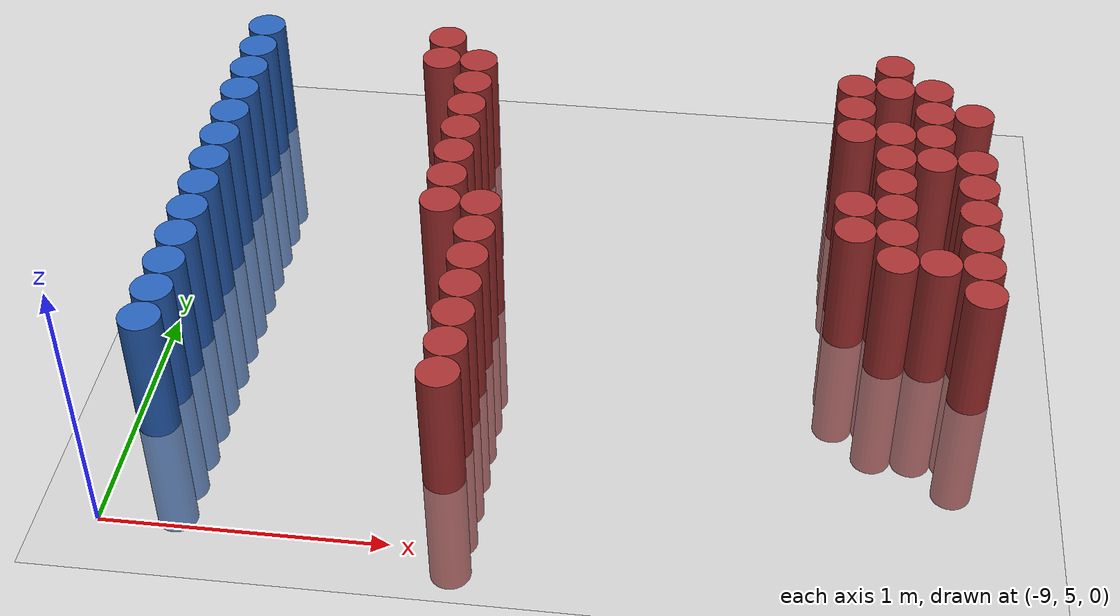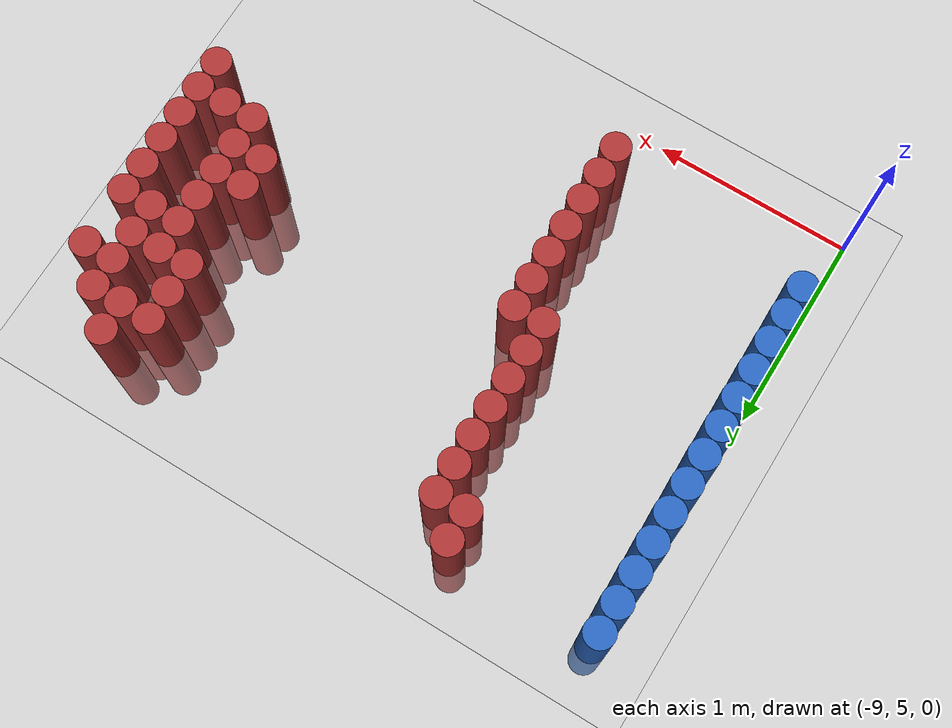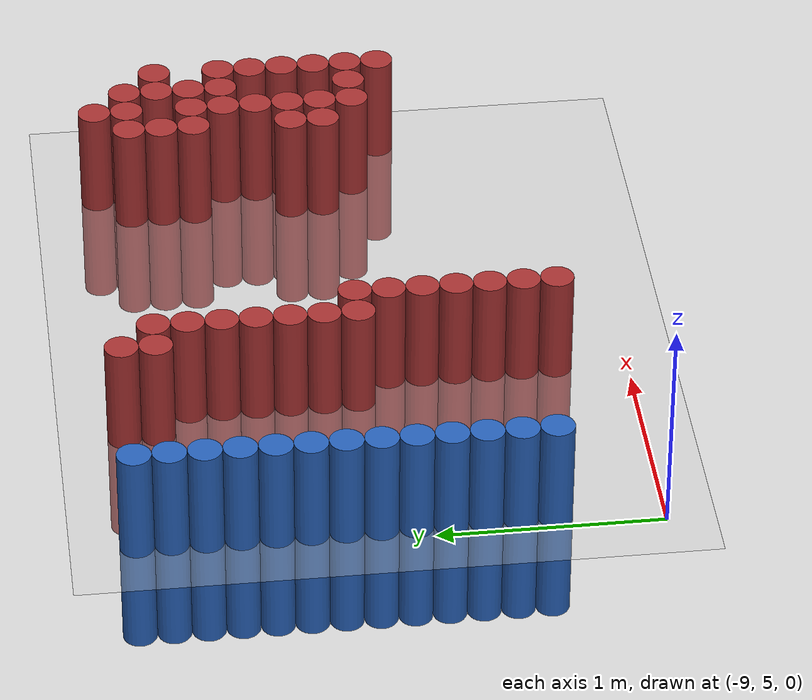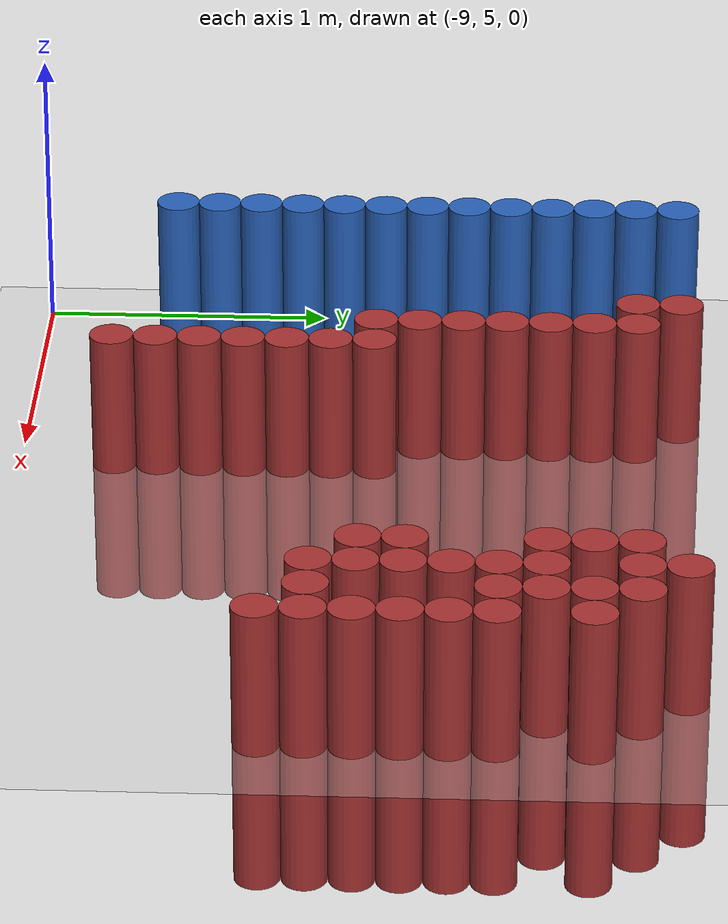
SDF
<sdf version="1.6">
 <world name="default">
  <model name="ground_plane">
   <static>1</static>
   <link name="link">
    <collision name="collision">
     <geometry><plane><normal>0 0 1</normal><size>100 100</size></plane></geometry>
     <surface><friction><ode><mu>100</mu><mu2>50</mu2></ode></friction></surface>
    </collision>
    <visual name="visual">
     <cast_shadows>0</cast_shadows>
     <geometry><plane><normal>0 0 1</normal><size>100 100</size></plane></geometry>
     <material>
      <script><uri>file://media/materials/scripts/gazebo.material</uri><name>Gazebo/Grey</name></script>
     </material>
    </visual>
   </link>
  </model>
  <model name="unit_cylinder_127">
   <static>1</static>
   <pose>-8.925000 5.475000 0.000000 0.000000 0.000000 0.000000</pose>
   <link name="link">
    <inertial>
     <mass>1</mass>
     <inertia><ixx>0.145833</ixx><ixy>0</ixy><ixz>0</ixz><iyy>0.145833</iyy><iyz>0</iyz><izz>0.125</izz></inertia>
    </inertial>
    <collision name="collision">
     <geometry><cylinder><radius>0.075000</radius><length>1</length></cylinder></geometry>
    </collision>
    <visual name="visual">
     <geometry><cylinder><radius>0.075000</radius><length>1</length></cylinder></geometry>
     <material>
      <ambient>0.152000 0.379000 0.720000 1</ambient>
      <diffuse>0.152000 0.379000 0.720000 1</diffuse>
     </material>
     <material>
      <script><name>Gazebo/Grey</name><uri>file://media/materials/scripts/gazebo.material</uri></script>
     </material>
    </visual>
   </link>
  </model>
  <model name="unit_cylinder_128">
   <static>1</static>
   <pose>-8.925000 5.625000 0.000000 0.000000 0.000000 0.000000</pose>
   <link name="link">
    <inertial>
     <mass>1</mass>
     <inertia><ixx>0.145833</ixx><ixy>0</ixy><ixz>0</ixz><iyy>0.145833</iyy><iyz>0</iyz><izz>0.125</izz></inertia>
    </inertial>
    <collision name="collision">
     <geometry><cylinder><radius>0.075000</radius><length>1</length></cylinder></geometry>
    </collision>
    <visual name="visual">
     <geometry><cylinder><radius>0.075000</radius><length>1</length></cylinder></geometry>
     <material>
      <ambient>0.152000 0.379000 0.720000 1</ambient>
      <diffuse>0.152000 0.379000 0.720000 1</diffuse>
     </material>
     <material>
      <script><name>Gazebo/Grey</name><uri>file://media/materials/scripts/gazebo.material</uri></script>
     </material>
    </visual>
   </link>
  </model>
  <model name="unit_cylinder_129">
   <static>1</static>
   <pose>-8.925000 5.775000 0.000000 0.000000 0.000000 0.000000</pose>
   <link name="link">
    <inertial>
     <mass>1</mass>
     <inertia><ixx>0.145833</ixx><ixy>0</ixy><ixz>0</ixz><iyy>0.145833</iyy><iyz>0</iyz><izz>0.125</izz></inertia>
    </inertial>
    <collision name="collision">
     <geometry><cylinder><radius>0.075000</radius><length>1</length></cylinder></geometry>
    </collision>
    <visual name="visual">
     <geometry><cylinder><radius>0.075000</radius><length>1</length></cylinder></geometry>
     <material>
      <ambient>0.152000 0.379000 0.720000 1</ambient>
      <diffuse>0.152000 0.379000 0.720000 1</diffuse>
     </material>
     <material>
      <script><name>Gazebo/Grey</name><uri>file://media/materials/scripts/gazebo.material</uri></script>
     </material>
    </visual>
   </link>
  </model>
  <model name="unit_cylinder_130">
   <static>1</static>
   <pose>-8.925000 5.925000 0.000000 0.000000 0.000000 0.000000</pose>
   <link name="link">
    <inertial>
     <mass>1</mass>
     <inertia><ixx>0.145833</ixx><ixy>0</ixy><ixz>0</ixz><iyy>0.145833</iyy><iyz>0</iyz><izz>0.125</izz></inertia>
    </inertial>
    <collision name="collision">
     <geometry><cylinder><radius>0.075000</radius><length>1</length></cylinder></geometry>
    </collision>
    <visual name="visual">
     <geometry><cylinder><radius>0.075000</radius><length>1</length></cylinder></geometry>
     <material>
      <ambient>0.152000 0.379000 0.720000 1</ambient>
      <diffuse>0.152000 0.379000 0.720000 1</diffuse>
     </material>
     <material>
      <script><name>Gazebo/Grey</name><uri>file://media/materials/scripts/gazebo.material</uri></script>
     </material>
    </visual>
   </link>
  </model>
  <model name="unit_cylinder_131">
   <static>1</static>
   <pose>-8.925000 6.075000 0.000000 0.000000 0.000000 0.000000</pose>
   <link name="link">
    <inertial>
     <mass>1</mass>
     <inertia><ixx>0.145833</ixx><ixy>0</ixy><ixz>0</ixz><iyy>0.145833</iyy><iyz>0</iyz><izz>0.125</izz></inertia>
    </inertial>
    <collision name="collision">
     <geometry><cylinder><radius>0.075000</radius><length>1</length></cylinder></geometry>
    </collision>
    <visual name="visual">
     <geometry><cylinder><radius>0.075000</radius><length>1</length></cylinder></geometry>
     <material>
      <ambient>0.152000 0.379000 0.720000 1</ambient>
      <diffuse>0.152000 0.379000 0.720000 1</diffuse>
     </material>
     <material>
      <script><name>Gazebo/Grey</name><uri>file://media/materials/scripts/gazebo.material</uri></script>
     </material>
    </visual>
   </link>
  </model>
  <model name="unit_cylinder_132">
   <static>1</static>
   <pose>-8.925000 6.225000 0.000000 0.000000 0.000000 0.000000</pose>
   <link name="link">
    <inertial>
     <mass>1</mass>
     <inertia><ixx>0.145833</ixx><ixy>0</ixy><ixz>0</ixz><iyy>0.145833</iyy><iyz>0</iyz><izz>0.125</izz></inertia>
    </inertial>
    <collision name="collision">
     <geometry><cylinder><radius>0.075000</radius><length>1</length></cylinder></geometry>
    </collision>
    <visual name="visual">
     <geometry><cylinder><radius>0.075000</radius><length>1</length></cylinder></geometry>
     <material>
      <ambient>0.152000 0.379000 0.720000 1</ambient>
      <diffuse>0.152000 0.379000 0.720000 1</diffuse>
     </material>
     <material>
      <script><name>Gazebo/Grey</name><uri>file://media/materials/scripts/gazebo.material</uri></script>
     </material>
    </visual>
   </link>
  </model>
  <model name="unit_cylinder_133">
   <static>1</static>
   <pose>-8.925000 6.375000 0.000000 0.000000 0.000000 0.000000</pose>
   <link name="link">
    <inertial>
     <mass>1</mass>
     <inertia><ixx>0.145833</ixx><ixy>0</ixy><ixz>0</ixz><iyy>0.145833</iyy><iyz>0</iyz><izz>0.125</izz></inertia>
    </inertial>
    <collision name="collision">
     <geometry><cylinder><radius>0.075000</radius><length>1</length></cylinder></geometry>
    </collision>
    <visual name="visual">
     <geometry><cylinder><radius>0.075000</radius><length>1</length></cylinder></geometry>
     <material>
      <ambient>0.152000 0.379000 0.720000 1</ambient>
      <diffuse>0.152000 0.379000 0.720000 1</diffuse>
     </material>
     <material>
      <script><name>Gazebo/Grey</name><uri>file://media/materials/scripts/gazebo.material</uri></script>
     </material>
    </visual>
   </link>
  </model>
  <model name="unit_cylinder_134">
   <static>1</static>
   <pose>-8.925000 6.525000 0.000000 0.000000 0.000000 0.000000</pose>
   <link name="link">
    <inertial>
     <mass>1</mass>
     <inertia><ixx>0.145833</ixx><ixy>0</ixy><ixz>0</ixz><iyy>0.145833</iyy><iyz>0</iyz><izz>0.125</izz></inertia>
    </inertial>
    <collision name="collision">
     <geometry><cylinder><radius>0.075000</radius><length>1</length></cylinder></geometry>
    </collision>
    <visual name="visual">
     <geometry><cylinder><radius>0.075000</radius><length>1</length></cylinder></geometry>
     <material>
      <ambient>0.152000 0.379000 0.720000 1</ambient>
      <diffuse>0.152000 0.379000 0.720000 1</diffuse>
     </material>
     <material>
      <script><name>Gazebo/Grey</name><uri>file://media/materials/scripts/gazebo.material</uri></script>
     </material>
    </visual>
   </link>
  </model>
  <model name="unit_cylinder_135">
   <static>1</static>
   <pose>-8.925000 6.675000 0.000000 0.000000 0.000000 0.000000</pose>
   <link name="link">
    <inertial>
     <mass>1</mass>
     <inertia><ixx>0.145833</ixx><ixy>0</ixy><ixz>0</ixz><iyy>0.145833</iyy><iyz>0</iyz><izz>0.125</izz></inertia>
    </inertial>
    <collision name="collision">
     <geometry><cylinder><radius>0.075000</radius><length>1</length></cylinder></geometry>
    </collision>
    <visual name="visual">
     <geometry><cylinder><radius>0.075000</radius><length>1</length></cylinder></geometry>
     <material>
      <ambient>0.152000 0.379000 0.720000 1</ambient>
      <diffuse>0.152000 0.379000 0.720000 1</diffuse>
     </material>
     <material>
      <script><name>Gazebo/Grey</name><uri>file://media/materials/scripts/gazebo.material</uri></script>
     </material>
    </visual>
   </link>
  </model>
  <model name="unit_cylinder_136">
   <static>1</static>
   <pose>-8.925000 6.825000 0.000000 0.000000 0.000000 0.000000</pose>
   <link name="link">
    <inertial>
     <mass>1</mass>
     <inertia><ixx>0.145833</ixx><ixy>0</ixy><ixz>0</ixz><iyy>0.145833</iyy><iyz>0</iyz><izz>0.125</izz></inertia>
    </inertial>
    <collision name="collision">
     <geometry><cylinder><radius>0.075000</radius><length>1</length></cylinder></geometry>
    </collision>
    <visual name="visual">
     <geometry><cylinder><radius>0.075000</radius><length>1</length></cylinder></geometry>
     <material>
      <ambient>0.152000 0.379000 0.720000 1</ambient>
      <diffuse>0.152000 0.379000 0.720000 1</diffuse>
     </material>
     <material>
      <script><name>Gazebo/Grey</name><uri>file://media/materials/scripts/gazebo.material</uri></script>
     </material>
    </visual>
   </link>
  </model>
  <model name="unit_cylinder_137">
   <static>1</static>
   <pose>-8.925000 6.975000 0.000000 0.000000 0.000000 0.000000</pose>
   <link name="link">
    <inertial>
     <mass>1</mass>
     <inertia><ixx>0.145833</ixx><ixy>0</ixy><ixz>0</ixz><iyy>0.145833</iyy><iyz>0</iyz><izz>0.125</izz></inertia>
    </inertial>
    <collision name="collision">
     <geometry><cylinder><radius>0.075000</radius><length>1</length></cylinder></geometry>
    </collision>
    <visual name="visual">
     <geometry><cylinder><radius>0.075000</radius><length>1</length></cylinder></geometry>
     <material>
      <ambient>0.152000 0.379000 0.720000 1</ambient>
      <diffuse>0.152000 0.379000 0.720000 1</diffuse>
     </material>
     <material>
      <script><name>Gazebo/Grey</name><uri>file://media/materials/scripts/gazebo.material</uri></script>
     </material>
    </visual>
   </link>
  </model>
  <model name="unit_cylinder_138">
   <static>1</static>
   <pose>-8.925000 7.125000 0.000000 0.000000 0.000000 0.000000</pose>
   <link name="link">
    <inertial>
     <mass>1</mass>
     <inertia><ixx>0.145833</ixx><ixy>0</ixy><ixz>0</ixz><iyy>0.145833</iyy><iyz>0</iyz><izz>0.125</izz></inertia>
    </inertial>
    <collision name="collision">
     <geometry><cylinder><radius>0.075000</radius><length>1</length></cylinder></geometry>
    </collision>
    <visual name="visual">
     <geometry><cylinder><radius>0.075000</radius><length>1</length></cylinder></geometry>
     <material>
      <ambient>0.152000 0.379000 0.720000 1</ambient>
      <diffuse>0.152000 0.379000 0.720000 1</diffuse>
     </material>
     <material>
      <script><name>Gazebo/Grey</name><uri>file://media/materials/scripts/gazebo.material</uri></script>
     </material>
    </visual>
   </link>
  </model>
  <model name="unit_cylinder_139">
   <static>1</static>
   <pose>-8.925000 7.275000 0.000000 0.000000 0.000000 0.000000</pose>
   <link name="link">
    <inertial>
     <mass>1</mass>
     <inertia><ixx>0.145833</ixx><ixy>0</ixy><ixz>0</ixz><iyy>0.145833</iyy><iyz>0</iyz><izz>0.125</izz></inertia>
    </inertial>
    <collision name="collision">
     <geometry><cylinder><radius>0.075000</radius><length>1</length></cylinder></geometry>
    </collision>
    <visual name="visual">
     <geometry><cylinder><radius>0.075000</radius><length>1</length></cylinder></geometry>
     <material>
      <ambient>0.152000 0.379000 0.720000 1</ambient>
      <diffuse>0.152000 0.379000 0.720000 1</diffuse>
     </material>
     <material>
      <script><name>Gazebo/Grey</name><uri>file://media/materials/scripts/gazebo.material</uri></script>
     </material>
    </visual>
   </link>
  </model>
  <model name="unit_cylinder_164">
   <static>1</static>
   <pose>-8.175000 7.125000 0.000000 0.000000 0.000000 0.000000</pose>
   <link name="link">
    <inertial>
     <mass>1</mass>
     <inertia><ixx>0.145833</ixx><ixy>0</ixy><ixz>0</ixz><iyy>0.145833</iyy><iyz>0</iyz><izz>0.125</izz></inertia>
    </inertial>
    <collision name="collision">
     <geometry><cylinder><radius>0.075000</radius><length>1</length></cylinder></geometry>
    </collision>
    <visual name="visual">
     <geometry><cylinder><radius>0.075000</radius><length>1</length></cylinder></geometry>
     <material>
      <ambient>0.648000 0.192000 0.192000 1</ambient>
      <diffuse>0.648000 0.192000 0.192000 1</diffuse>
     </material>
     <material>
      <script><name>Gazebo/Grey</name><uri>file://media/materials/scripts/gazebo.material</uri></script>
     </material>
    </visual>
   </link>
  </model>
  <model name="unit_cylinder_165">
   <static>1</static>
   <pose>-8.175000 7.275000 0.000000 0.000000 0.000000 0.000000</pose>
   <link name="link">
    <inertial>
     <mass>1</mass>
     <inertia><ixx>0.145833</ixx><ixy>0</ixy><ixz>0</ixz><iyy>0.145833</iyy><iyz>0</iyz><izz>0.125</izz></inertia>
    </inertial>
    <collision name="collision">
     <geometry><cylinder><radius>0.075000</radius><length>1</length></cylinder></geometry>
    </collision>
    <visual name="visual">
     <geometry><cylinder><radius>0.075000</radius><length>1</length></cylinder></geometry>
     <material>
      <ambient>0.648000 0.192000 0.192000 1</ambient>
      <diffuse>0.648000 0.192000 0.192000 1</diffuse>
     </material>
     <material>
      <script><name>Gazebo/Grey</name><uri>file://media/materials/scripts/gazebo.material</uri></script>
     </material>
    </visual>
   </link>
  </model>
  <model name="unit_cylinder_182">
   <static>1</static>
   <pose>-8.025000 6.225000 0.000000 0.000000 0.000000 0.000000</pose>
   <link name="link">
    <inertial>
     <mass>1</mass>
     <inertia><ixx>0.145833</ixx><ixy>0</ixy><ixz>0</ixz><iyy>0.145833</iyy><iyz>0</iyz><izz>0.125</izz></inertia>
    </inertial>
    <collision name="collision">
     <geometry><cylinder><radius>0.075000</radius><length>1</length></cylinder></geometry>
    </collision>
    <visual name="visual">
     <geometry><cylinder><radius>0.075000</radius><length>1</length></cylinder></geometry>
     <material>
      <ambient>0.648000 0.192000 0.192000 1</ambient>
      <diffuse>0.648000 0.192000 0.192000 1</diffuse>
     </material>
     <material>
      <script><name>Gazebo/Grey</name><uri>file://media/materials/scripts/gazebo.material</uri></script>
     </material>
    </visual>
   </link>
  </model>
  <model name="unit_cylinder_183">
   <static>1</static>
   <pose>-8.025000 6.375000 0.000000 0.000000 0.000000 0.000000</pose>
   <link name="link">
    <inertial>
     <mass>1</mass>
     <inertia><ixx>0.145833</ixx><ixy>0</ixy><ixz>0</ixz><iyy>0.145833</iyy><iyz>0</iyz><izz>0.125</izz></inertia>
    </inertial>
    <collision name="collision">
     <geometry><cylinder><radius>0.075000</radius><length>1</length></cylinder></geometry>
    </collision>
    <visual name="visual">
     <geometry><cylinder><radius>0.075000</radius><length>1</length></cylinder></geometry>
     <material>
      <ambient>0.648000 0.192000 0.192000 1</ambient>
      <diffuse>0.648000 0.192000 0.192000 1</diffuse>
     </material>
     <material>
      <script><name>Gazebo/Grey</name><uri>file://media/materials/scripts/gazebo.material</uri></script>
     </material>
    </visual>
   </link>
  </model>
  <model name="unit_cylinder_184">
   <static>1</static>
   <pose>-8.025000 6.525000 0.000000 0.000000 0.000000 0.000000</pose>
   <link name="link">
    <inertial>
     <mass>1</mass>
     <inertia><ixx>0.145833</ixx><ixy>0</ixy><ixz>0</ixz><iyy>0.145833</iyy><iyz>0</iyz><izz>0.125</izz></inertia>
    </inertial>
    <collision name="collision">
     <geometry><cylinder><radius>0.075000</radius><length>1</length></cylinder></geometry>
    </collision>
    <visual name="visual">
     <geometry><cylinder><radius>0.075000</radius><length>1</length></cylinder></geometry>
     <material>
      <ambient>0.648000 0.192000 0.192000 1</ambient>
      <diffuse>0.648000 0.192000 0.192000 1</diffuse>
     </material>
     <material>
      <script><name>Gazebo/Grey</name><uri>file://media/materials/scripts/gazebo.material</uri></script>
     </material>
    </visual>
   </link>
  </model>
  <model name="unit_cylinder_185">
   <static>1</static>
   <pose>-8.025000 6.675000 0.000000 0.000000 0.000000 0.000000</pose>
   <link name="link">
    <inertial>
     <mass>1</mass>
     <inertia><ixx>0.145833</ixx><ixy>0</ixy><ixz>0</ixz><iyy>0.145833</iyy><iyz>0</iyz><izz>0.125</izz></inertia>
    </inertial>
    <collision name="collision">
     <geometry><cylinder><radius>0.075000</radius><length>1</length></cylinder></geometry>
    </collision>
    <visual name="visual">
     <geometry><cylinder><radius>0.075000</radius><length>1</length></cylinder></geometry>
     <material>
      <ambient>0.648000 0.192000 0.192000 1</ambient>
      <diffuse>0.648000 0.192000 0.192000 1</diffuse>
     </material>
     <material>
      <script><name>Gazebo/Grey</name><uri>file://media/materials/scripts/gazebo.material</uri></script>
     </material>
    </visual>
   </link>
  </model>
  <model name="unit_cylinder_186">
   <static>1</static>
   <pose>-8.025000 6.825000 0.000000 0.000000 0.000000 0.000000</pose>
   <link name="link">
    <inertial>
     <mass>1</mass>
     <inertia><ixx>0.145833</ixx><ixy>0</ixy><ixz>0</ixz><iyy>0.145833</iyy><iyz>0</iyz><izz>0.125</izz></inertia>
    </inertial>
    <collision name="collision">
     <geometry><cylinder><radius>0.075000</radius><length>1</length></cylinder></geometry>
    </collision>
    <visual name="visual">
     <geometry><cylinder><radius>0.075000</radius><length>1</length></cylinder></geometry>
     <material>
      <ambient>0.648000 0.192000 0.192000 1</ambient>
      <diffuse>0.648000 0.192000 0.192000 1</diffuse>
     </material>
     <material>
      <script><name>Gazebo/Grey</name><uri>file://media/materials/scripts/gazebo.material</uri></script>
     </material>
    </visual>
   </link>
  </model>
  <model name="unit_cylinder_187">
   <static>1</static>
   <pose>-8.025000 6.975000 0.000000 0.000000 0.000000 0.000000</pose>
   <link name="link">
    <inertial>
     <mass>1</mass>
     <inertia><ixx>0.145833</ixx><ixy>0</ixy><ixz>0</ixz><iyy>0.145833</iyy><iyz>0</iyz><izz>0.125</izz></inertia>
    </inertial>
    <collision name="collision">
     <geometry><cylinder><radius>0.075000</radius><length>1</length></cylinder></geometry>
    </collision>
    <visual name="visual">
     <geometry><cylinder><radius>0.075000</radius><length>1</length></cylinder></geometry>
     <material>
      <ambient>0.648000 0.192000 0.192000 1</ambient>
      <diffuse>0.648000 0.192000 0.192000 1</diffuse>
     </material>
     <material>
      <script><name>Gazebo/Grey</name><uri>file://media/materials/scripts/gazebo.material</uri></script>
     </material>
    </visual>
   </link>
  </model>
  <model name="unit_cylinder_188">
   <static>1</static>
   <pose>-8.025000 7.125000 0.000000 0.000000 0.000000 0.000000</pose>
   <link name="link">
    <inertial>
     <mass>1</mass>
     <inertia><ixx>0.145833</ixx><ixy>0</ixy><ixz>0</ixz><iyy>0.145833</iyy><iyz>0</iyz><izz>0.125</izz></inertia>
    </inertial>
    <collision name="collision">
     <geometry><cylinder><radius>0.075000</radius><length>1</length></cylinder></geometry>
    </collision>
    <visual name="visual">
     <geometry><cylinder><radius>0.075000</radius><length>1</length></cylinder></geometry>
     <material>
      <ambient>0.648000 0.192000 0.192000 1</ambient>
      <diffuse>0.648000 0.192000 0.192000 1</diffuse>
     </material>
     <material>
      <script><name>Gazebo/Grey</name><uri>file://media/materials/scripts/gazebo.material</uri></script>
     </material>
    </visual>
   </link>
  </model>
  <model name="unit_cylinder_190">
   <static>1</static>
   <pose>-7.875000 5.325000 0.000000 0.000000 0.000000 0.000000</pose>
   <link name="link">
    <inertial>
     <mass>1</mass>
     <inertia><ixx>0.145833</ixx><ixy>0</ixy><ixz>0</ixz><iyy>0.145833</iyy><iyz>0</iyz><izz>0.125</izz></inertia>
    </inertial>
    <collision name="collision">
     <geometry><cylinder><radius>0.075000</radius><length>1</length></cylinder></geometry>
    </collision>
    <visual name="visual">
     <geometry><cylinder><radius>0.075000</radius><length>1</length></cylinder></geometry>
     <material>
      <ambient>0.648000 0.192000 0.192000 1</ambient>
      <diffuse>0.648000 0.192000 0.192000 1</diffuse>
     </material>
     <material>
      <script><name>Gazebo/Grey</name><uri>file://media/materials/scripts/gazebo.material</uri></script>
     </material>
    </visual>
   </link>
  </model>
  <model name="unit_cylinder_191">
   <static>1</static>
   <pose>-7.875000 5.475000 0.000000 0.000000 0.000000 0.000000</pose>
   <link name="link">
    <inertial>
     <mass>1</mass>
     <inertia><ixx>0.145833</ixx><ixy>0</ixy><ixz>0</ixz><iyy>0.145833</iyy><iyz>0</iyz><izz>0.125</izz></inertia>
    </inertial>
    <collision name="collision">
     <geometry><cylinder><radius>0.075000</radius><length>1</length></cylinder></geometry>
    </collision>
    <visual name="visual">
     <geometry><cylinder><radius>0.075000</radius><length>1</length></cylinder></geometry>
     <material>
      <ambient>0.648000 0.192000 0.192000 1</ambient>
      <diffuse>0.648000 0.192000 0.192000 1</diffuse>
     </material>
     <material>
      <script><name>Gazebo/Grey</name><uri>file://media/materials/scripts/gazebo.material</uri></script>
     </material>
    </visual>
   </link>
  </model>
  <model name="unit_cylinder_192">
   <static>1</static>
   <pose>-7.875000 5.625000 0.000000 0.000000 0.000000 0.000000</pose>
   <link name="link">
    <inertial>
     <mass>1</mass>
     <inertia><ixx>0.145833</ixx><ixy>0</ixy><ixz>0</ixz><iyy>0.145833</iyy><iyz>0</iyz><izz>0.125</izz></inertia>
    </inertial>
    <collision name="collision">
     <geometry><cylinder><radius>0.075000</radius><length>1</length></cylinder></geometry>
    </collision>
    <visual name="visual">
     <geometry><cylinder><radius>0.075000</radius><length>1</length></cylinder></geometry>
     <material>
      <ambient>0.648000 0.192000 0.192000 1</ambient>
      <diffuse>0.648000 0.192000 0.192000 1</diffuse>
     </material>
     <material>
      <script><name>Gazebo/Grey</name><uri>file://media/materials/scripts/gazebo.material</uri></script>
     </material>
    </visual>
   </link>
  </model>
  <model name="unit_cylinder_193">
   <static>1</static>
   <pose>-7.875000 5.775000 0.000000 0.000000 0.000000 0.000000</pose>
   <link name="link">
    <inertial>
     <mass>1</mass>
     <inertia><ixx>0.145833</ixx><ixy>0</ixy><ixz>0</ixz><iyy>0.145833</iyy><iyz>0</iyz><izz>0.125</izz></inertia>
    </inertial>
    <collision name="collision">
     <geometry><cylinder><radius>0.075000</radius><length>1</length></cylinder></geometry>
    </collision>
    <visual name="visual">
     <geometry><cylinder><radius>0.075000</radius><length>1</length></cylinder></geometry>
     <material>
      <ambient>0.648000 0.192000 0.192000 1</ambient>
      <diffuse>0.648000 0.192000 0.192000 1</diffuse>
     </material>
     <material>
      <script><name>Gazebo/Grey</name><uri>file://media/materials/scripts/gazebo.material</uri></script>
     </material>
    </visual>
   </link>
  </model>
  <model name="unit_cylinder_194">
   <static>1</static>
   <pose>-7.875000 5.925000 0.000000 0.000000 0.000000 0.000000</pose>
   <link name="link">
    <inertial>
     <mass>1</mass>
     <inertia><ixx>0.145833</ixx><ixy>0</ixy><ixz>0</ixz><iyy>0.145833</iyy><iyz>0</iyz><izz>0.125</izz></inertia>
    </inertial>
    <collision name="collision">
     <geometry><cylinder><radius>0.075000</radius><length>1</length></cylinder></geometry>
    </collision>
    <visual name="visual">
     <geometry><cylinder><radius>0.075000</radius><length>1</length></cylinder></geometry>
     <material>
      <ambient>0.648000 0.192000 0.192000 1</ambient>
      <diffuse>0.648000 0.192000 0.192000 1</diffuse>
     </material>
     <material>
      <script><name>Gazebo/Grey</name><uri>file://media/materials/scripts/gazebo.material</uri></script>
     </material>
    </visual>
   </link>
  </model>
  <model name="unit_cylinder_195">
   <static>1</static>
   <pose>-7.875000 6.075000 0.000000 0.000000 0.000000 0.000000</pose>
   <link name="link">
    <inertial>
     <mass>1</mass>
     <inertia><ixx>0.145833</ixx><ixy>0</ixy><ixz>0</ixz><iyy>0.145833</iyy><iyz>0</iyz><izz>0.125</izz></inertia>
    </inertial>
    <collision name="collision">
     <geometry><cylinder><radius>0.075000</radius><length>1</length></cylinder></geometry>
    </collision>
    <visual name="visual">
     <geometry><cylinder><radius>0.075000</radius><length>1</length></cylinder></geometry>
     <material>
      <ambient>0.648000 0.192000 0.192000 1</ambient>
      <diffuse>0.648000 0.192000 0.192000 1</diffuse>
     </material>
     <material>
      <script><name>Gazebo/Grey</name><uri>file://media/materials/scripts/gazebo.material</uri></script>
     </material>
    </visual>
   </link>
  </model>
  <model name="unit_cylinder_196">
   <static>1</static>
   <pose>-7.875000 6.225000 0.000000 0.000000 0.000000 0.000000</pose>
   <link name="link">
    <inertial>
     <mass>1</mass>
     <inertia><ixx>0.145833</ixx><ixy>0</ixy><ixz>0</ixz><iyy>0.145833</iyy><iyz>0</iyz><izz>0.125</izz></inertia>
    </inertial>
    <collision name="collision">
     <geometry><cylinder><radius>0.075000</radius><length>1</length></cylinder></geometry>
    </collision>
    <visual name="visual">
     <geometry><cylinder><radius>0.075000</radius><length>1</length></cylinder></geometry>
     <material>
      <ambient>0.648000 0.192000 0.192000 1</ambient>
      <diffuse>0.648000 0.192000 0.192000 1</diffuse>
     </material>
     <material>
      <script><name>Gazebo/Grey</name><uri>file://media/materials/scripts/gazebo.material</uri></script>
     </material>
    </visual>
   </link>
  </model>
  <model name="unit_cylinder_205">
   <static>1</static>
   <pose>-6.525000 6.225000 0.000000 0.000000 0.000000 0.000000</pose>
   <link name="link">
    <inertial>
     <mass>1</mass>
     <inertia><ixx>0.145833</ixx><ixy>0</ixy><ixz>0</ixz><iyy>0.145833</iyy><iyz>0</iyz><izz>0.125</izz></inertia>
    </inertial>
    <collision name="collision">
     <geometry><cylinder><radius>0.075000</radius><length>1</length></cylinder></geometry>
    </collision>
    <visual name="visual">
     <geometry><cylinder><radius>0.075000</radius><length>1</length></cylinder></geometry>
     <material>
      <ambient>0.648000 0.192000 0.192000 1</ambient>
      <diffuse>0.648000 0.192000 0.192000 1</diffuse>
     </material>
     <material>
      <script><name>Gazebo/Grey</name><uri>file://media/materials/scripts/gazebo.material</uri></script>
     </material>
    </visual>
   </link>
  </model>
  <model name="unit_cylinder_206">
   <static>1</static>
   <pose>-6.525000 6.375000 0.000000 0.000000 0.000000 0.000000</pose>
   <link name="link">
    <inertial>
     <mass>1</mass>
     <inertia><ixx>0.145833</ixx><ixy>0</ixy><ixz>0</ixz><iyy>0.145833</iyy><iyz>0</iyz><izz>0.125</izz></inertia>
    </inertial>
    <collision name="collision">
     <geometry><cylinder><radius>0.075000</radius><length>1</length></cylinder></geometry>
    </collision>
    <visual name="visual">
     <geometry><cylinder><radius>0.075000</radius><length>1</length></cylinder></geometry>
     <material>
      <ambient>0.648000 0.192000 0.192000 1</ambient>
      <diffuse>0.648000 0.192000 0.192000 1</diffuse>
     </material>
     <material>
      <script><name>Gazebo/Grey</name><uri>file://media/materials/scripts/gazebo.material</uri></script>
     </material>
    </visual>
   </link>
  </model>
  <model name="unit_cylinder_207">
   <static>1</static>
   <pose>-6.525000 6.825000 0.000000 0.000000 0.000000 0.000000</pose>
   <link name="link">
    <inertial>
     <mass>1</mass>
     <inertia><ixx>0.145833</ixx><ixy>0</ixy><ixz>0</ixz><iyy>0.145833</iyy><iyz>0</iyz><izz>0.125</izz></inertia>
    </inertial>
    <collision name="collision">
     <geometry><cylinder><radius>0.075000</radius><length>1</length></cylinder></geometry>
    </collision>
    <visual name="visual">
     <geometry><cylinder><radius>0.075000</radius><length>1</length></cylinder></geometry>
     <material>
      <ambient>0.648000 0.192000 0.192000 1</ambient>
      <diffuse>0.648000 0.192000 0.192000 1</diffuse>
     </material>
     <material>
      <script><name>Gazebo/Grey</name><uri>file://media/materials/scripts/gazebo.material</uri></script>
     </material>
    </visual>
   </link>
  </model>
  <model name="unit_cylinder_208">
   <static>1</static>
   <pose>-6.525000 6.975000 0.000000 0.000000 0.000000 0.000000</pose>
   <link name="link">
    <inertial>
     <mass>1</mass>
     <inertia><ixx>0.145833</ixx><ixy>0</ixy><ixz>0</ixz><iyy>0.145833</iyy><iyz>0</iyz><izz>0.125</izz></inertia>
    </inertial>
    <collision name="collision">
     <geometry><cylinder><radius>0.075000</radius><length>1</length></cylinder></geometry>
    </collision>
    <visual name="visual">
     <geometry><cylinder><radius>0.075000</radius><length>1</length></cylinder></geometry>
     <material>
      <ambient>0.648000 0.192000 0.192000 1</ambient>
      <diffuse>0.648000 0.192000 0.192000 1</diffuse>
     </material>
     <material>
      <script><name>Gazebo/Grey</name><uri>file://media/materials/scripts/gazebo.material</uri></script>
     </material>
    </visual>
   </link>
  </model>
  <model name="unit_cylinder_209">
   <static>1</static>
   <pose>-6.525000 7.125000 0.000000 0.000000 0.000000 0.000000</pose>
   <link name="link">
    <inertial>
     <mass>1</mass>
     <inertia><ixx>0.145833</ixx><ixy>0</ixy><ixz>0</ixz><iyy>0.145833</iyy><iyz>0</iyz><izz>0.125</izz></inertia>
    </inertial>
    <collision name="collision">
     <geometry><cylinder><radius>0.075000</radius><length>1</length></cylinder></geometry>
    </collision>
    <visual name="visual">
     <geometry><cylinder><radius>0.075000</radius><length>1</length></cylinder></geometry>
     <material>
      <ambient>0.648000 0.192000 0.192000 1</ambient>
      <diffuse>0.648000 0.192000 0.192000 1</diffuse>
     </material>
     <material>
      <script><name>Gazebo/Grey</name><uri>file://media/materials/scripts/gazebo.material</uri></script>
     </material>
    </visual>
   </link>
  </model>
  <model name="unit_cylinder_217">
   <static>1</static>
   <pose>-6.375000 6.075000 0.000000 0.000000 0.000000 0.000000</pose>
   <link name="link">
    <inertial>
     <mass>1</mass>
     <inertia><ixx>0.145833</ixx><ixy>0</ixy><ixz>0</ixz><iyy>0.145833</iyy><iyz>0</iyz><izz>0.125</izz></inertia>
    </inertial>
    <collision name="collision">
     <geometry><cylinder><radius>0.075000</radius><length>1</length></cylinder></geometry>
    </collision>
    <visual name="visual">
     <geometry><cylinder><radius>0.075000</radius><length>1</length></cylinder></geometry>
     <material>
      <ambient>0.648000 0.192000 0.192000 1</ambient>
      <diffuse>0.648000 0.192000 0.192000 1</diffuse>
     </material>
     <material>
      <script><name>Gazebo/Grey</name><uri>file://media/materials/scripts/gazebo.material</uri></script>
     </material>
    </visual>
   </link>
  </model>
  <model name="unit_cylinder_218">
   <static>1</static>
   <pose>-6.375000 6.225000 0.000000 0.000000 0.000000 0.000000</pose>
   <link name="link">
    <inertial>
     <mass>1</mass>
     <inertia><ixx>0.145833</ixx><ixy>0</ixy><ixz>0</ixz><iyy>0.145833</iyy><iyz>0</iyz><izz>0.125</izz></inertia>
    </inertial>
    <collision name="collision">
     <geometry><cylinder><radius>0.075000</radius><length>1</length></cylinder></geometry>
    </collision>
    <visual name="visual">
     <geometry><cylinder><radius>0.075000</radius><length>1</length></cylinder></geometry>
     <material>
      <ambient>0.648000 0.192000 0.192000 1</ambient>
      <diffuse>0.648000 0.192000 0.192000 1</diffuse>
     </material>
     <material>
      <script><name>Gazebo/Grey</name><uri>file://media/materials/scripts/gazebo.material</uri></script>
     </material>
    </visual>
   </link>
  </model>
  <model name="unit_cylinder_219">
   <static>1</static>
   <pose>-6.375000 6.375000 0.000000 0.000000 0.000000 0.000000</pose>
   <link name="link">
    <inertial>
     <mass>1</mass>
     <inertia><ixx>0.145833</ixx><ixy>0</ixy><ixz>0</ixz><iyy>0.145833</iyy><iyz>0</iyz><izz>0.125</izz></inertia>
    </inertial>
    <collision name="collision">
     <geometry><cylinder><radius>0.075000</radius><length>1</length></cylinder></geometry>
    </collision>
    <visual name="visual">
     <geometry><cylinder><radius>0.075000</radius><length>1</length></cylinder></geometry>
     <material>
      <ambient>0.648000 0.192000 0.192000 1</ambient>
      <diffuse>0.648000 0.192000 0.192000 1</diffuse>
     </material>
     <material>
      <script><name>Gazebo/Grey</name><uri>file://media/materials/scripts/gazebo.material</uri></script>
     </material>
    </visual>
   </link>
  </model>
  <model name="unit_cylinder_220">
   <static>1</static>
   <pose>-6.375000 6.525000 0.000000 0.000000 0.000000 0.000000</pose>
   <link name="link">
    <inertial>
     <mass>1</mass>
     <inertia><ixx>0.145833</ixx><ixy>0</ixy><ixz>0</ixz><iyy>0.145833</iyy><iyz>0</iyz><izz>0.125</izz></inertia>
    </inertial>
    <collision name="collision">
     <geometry><cylinder><radius>0.075000</radius><length>1</length></cylinder></geometry>
    </collision>
    <visual name="visual">
     <geometry><cylinder><radius>0.075000</radius><length>1</length></cylinder></geometry>
     <material>
      <ambient>0.648000 0.192000 0.192000 1</ambient>
      <diffuse>0.648000 0.192000 0.192000 1</diffuse>
     </material>
     <material>
      <script><name>Gazebo/Grey</name><uri>file://media/materials/scripts/gazebo.material</uri></script>
     </material>
    </visual>
   </link>
  </model>
  <model name="unit_cylinder_221">
   <static>1</static>
   <pose>-6.375000 6.675000 0.000000 0.000000 0.000000 0.000000</pose>
   <link name="link">
    <inertial>
     <mass>1</mass>
     <inertia><ixx>0.145833</ixx><ixy>0</ixy><ixz>0</ixz><iyy>0.145833</iyy><iyz>0</iyz><izz>0.125</izz></inertia>
    </inertial>
    <collision name="collision">
     <geometry><cylinder><radius>0.075000</radius><length>1</length></cylinder></geometry>
    </collision>
    <visual name="visual">
     <geometry><cylinder><radius>0.075000</radius><length>1</length></cylinder></geometry>
     <material>
      <ambient>0.648000 0.192000 0.192000 1</ambient>
      <diffuse>0.648000 0.192000 0.192000 1</diffuse>
     </material>
     <material>
      <script><name>Gazebo/Grey</name><uri>file://media/materials/scripts/gazebo.material</uri></script>
     </material>
    </visual>
   </link>
  </model>
  <model name="unit_cylinder_222">
   <static>1</static>
   <pose>-6.375000 6.825000 0.000000 0.000000 0.000000 0.000000</pose>
   <link name="link">
    <inertial>
     <mass>1</mass>
     <inertia><ixx>0.145833</ixx><ixy>0</ixy><ixz>0</ixz><iyy>0.145833</iyy><iyz>0</iyz><izz>0.125</izz></inertia>
    </inertial>
    <collision name="collision">
     <geometry><cylinder><radius>0.075000</radius><length>1</length></cylinder></geometry>
    </collision>
    <visual name="visual">
     <geometry><cylinder><radius>0.075000</radius><length>1</length></cylinder></geometry>
     <material>
      <ambient>0.648000 0.192000 0.192000 1</ambient>
      <diffuse>0.648000 0.192000 0.192000 1</diffuse>
     </material>
     <material>
      <script><name>Gazebo/Grey</name><uri>file://media/materials/scripts/gazebo.material</uri></script>
     </material>
    </visual>
   </link>
  </model>
  <model name="unit_cylinder_223">
   <static>1</static>
   <pose>-6.375000 7.125000 0.000000 0.000000 0.000000 0.000000</pose>
   <link name="link">
    <inertial>
     <mass>1</mass>
     <inertia><ixx>0.145833</ixx><ixy>0</ixy><ixz>0</ixz><iyy>0.145833</iyy><iyz>0</iyz><izz>0.125</izz></inertia>
    </inertial>
    <collision name="collision">
     <geometry><cylinder><radius>0.075000</radius><length>1</length></cylinder></geometry>
    </collision>
    <visual name="visual">
     <geometry><cylinder><radius>0.075000</radius><length>1</length></cylinder></geometry>
     <material>
      <ambient>0.648000 0.192000 0.192000 1</ambient>
      <diffuse>0.648000 0.192000 0.192000 1</diffuse>
     </material>
     <material>
      <script><name>Gazebo/Grey</name><uri>file://media/materials/scripts/gazebo.material</uri></script>
     </material>
    </visual>
   </link>
  </model>
  <model name="unit_cylinder_224">
   <static>1</static>
   <pose>-6.375000 7.275000 0.000000 0.000000 0.000000 0.000000</pose>
   <link name="link">
    <inertial>
     <mass>1</mass>
     <inertia><ixx>0.145833</ixx><ixy>0</ixy><ixz>0</ixz><iyy>0.145833</iyy><iyz>0</iyz><izz>0.125</izz></inertia>
    </inertial>
    <collision name="collision">
     <geometry><cylinder><radius>0.075000</radius><length>1</length></cylinder></geometry>
    </collision>
    <visual name="visual">
     <geometry><cylinder><radius>0.075000</radius><length>1</length></cylinder></geometry>
     <material>
      <ambient>0.648000 0.192000 0.192000 1</ambient>
      <diffuse>0.648000 0.192000 0.192000 1</diffuse>
     </material>
     <material>
      <script><name>Gazebo/Grey</name><uri>file://media/materials/scripts/gazebo.material</uri></script>
     </material>
    </visual>
   </link>
  </model>
  <model name="unit_cylinder_227">
   <static>1</static>
   <pose>-6.225000 6.075000 0.000000 0.000000 0.000000 0.000000</pose>
   <link name="link">
    <inertial>
     <mass>1</mass>
     <inertia><ixx>0.145833</ixx><ixy>0</ixy><ixz>0</ixz><iyy>0.145833</iyy><iyz>0</iyz><izz>0.125</izz></inertia>
    </inertial>
    <collision name="collision">
     <geometry><cylinder><radius>0.075000</radius><length>1</length></cylinder></geometry>
    </collision>
    <visual name="visual">
     <geometry><cylinder><radius>0.075000</radius><length>1</length></cylinder></geometry>
     <material>
      <ambient>0.648000 0.192000 0.192000 1</ambient>
      <diffuse>0.648000 0.192000 0.192000 1</diffuse>
     </material>
     <material>
      <script><name>Gazebo/Grey</name><uri>file://media/materials/scripts/gazebo.material</uri></script>
     </material>
    </visual>
   </link>
  </model>
  <model name="unit_cylinder_228">
   <static>1</static>
   <pose>-6.225000 6.675000 0.000000 0.000000 0.000000 0.000000</pose>
   <link name="link">
    <inertial>
     <mass>1</mass>
     <inertia><ixx>0.145833</ixx><ixy>0</ixy><ixz>0</ixz><iyy>0.145833</iyy><iyz>0</iyz><izz>0.125</izz></inertia>
    </inertial>
    <collision name="collision">
     <geometry><cylinder><radius>0.075000</radius><length>1</length></cylinder></geometry>
    </collision>
    <visual name="visual">
     <geometry><cylinder><radius>0.075000</radius><length>1</length></cylinder></geometry>
     <material>
      <ambient>0.648000 0.192000 0.192000 1</ambient>
      <diffuse>0.648000 0.192000 0.192000 1</diffuse>
     </material>
     <material>
      <script><name>Gazebo/Grey</name><uri>file://media/materials/scripts/gazebo.material</uri></script>
     </material>
    </visual>
   </link>
  </model>
  <model name="unit_cylinder_229">
   <static>1</static>
   <pose>-6.225000 6.825000 0.000000 0.000000 0.000000 0.000000</pose>
   <link name="link">
    <inertial>
     <mass>1</mass>
     <inertia><ixx>0.145833</ixx><ixy>0</ixy><ixz>0</ixz><iyy>0.145833</iyy><iyz>0</iyz><izz>0.125</izz></inertia>
    </inertial>
    <collision name="collision">
     <geometry><cylinder><radius>0.075000</radius><length>1</length></cylinder></geometry>
    </collision>
    <visual name="visual">
     <geometry><cylinder><radius>0.075000</radius><length>1</length></cylinder></geometry>
     <material>
      <ambient>0.648000 0.192000 0.192000 1</ambient>
      <diffuse>0.648000 0.192000 0.192000 1</diffuse>
     </material>
     <material>
      <script><name>Gazebo/Grey</name><uri>file://media/materials/scripts/gazebo.material</uri></script>
     </material>
    </visual>
   </link>
  </model>
  <model name="unit_cylinder_230">
   <static>1</static>
   <pose>-6.225000 6.975000 0.000000 0.000000 0.000000 0.000000</pose>
   <link name="link">
    <inertial>
     <mass>1</mass>
     <inertia><ixx>0.145833</ixx><ixy>0</ixy><ixz>0</ixz><iyy>0.145833</iyy><iyz>0</iyz><izz>0.125</izz></inertia>
    </inertial>
    <collision name="collision">
     <geometry><cylinder><radius>0.075000</radius><length>1</length></cylinder></geometry>
    </collision>
    <visual name="visual">
     <geometry><cylinder><radius>0.075000</radius><length>1</length></cylinder></geometry>
     <material>
      <ambient>0.648000 0.192000 0.192000 1</ambient>
      <diffuse>0.648000 0.192000 0.192000 1</diffuse>
     </material>
     <material>
      <script><name>Gazebo/Grey</name><uri>file://media/materials/scripts/gazebo.material</uri></script>
     </material>
    </visual>
   </link>
  </model>
  <model name="unit_cylinder_231">
   <static>1</static>
   <pose>-6.225000 7.125000 0.000000 0.000000 0.000000 0.000000</pose>
   <link name="link">
    <inertial>
     <mass>1</mass>
     <inertia><ixx>0.145833</ixx><ixy>0</ixy><ixz>0</ixz><iyy>0.145833</iyy><iyz>0</iyz><izz>0.125</izz></inertia>
    </inertial>
    <collision name="collision">
     <geometry><cylinder><radius>0.075000</radius><length>1</length></cylinder></geometry>
    </collision>
    <visual name="visual">
     <geometry><cylinder><radius>0.075000</radius><length>1</length></cylinder></geometry>
     <material>
      <ambient>0.648000 0.192000 0.192000 1</ambient>
      <diffuse>0.648000 0.192000 0.192000 1</diffuse>
     </material>
     <material>
      <script><name>Gazebo/Grey</name><uri>file://media/materials/scripts/gazebo.material</uri></script>
     </material>
    </visual>
   </link>
  </model>
  <model name="unit_cylinder_234">
   <static>1</static>
   <pose>-6.075000 5.925000 0.000000 0.000000 0.000000 0.000000</pose>
   <link name="link">
    <inertial>
     <mass>1</mass>
     <inertia><ixx>0.145833</ixx><ixy>0</ixy><ixz>0</ixz><iyy>0.145833</iyy><iyz>0</iyz><izz>0.125</izz></inertia>
    </inertial>
    <collision name="collision">
     <geometry><cylinder><radius>0.075000</radius><length>1</length></cylinder></geometry>
    </collision>
    <visual name="visual">
     <geometry><cylinder><radius>0.075000</radius><length>1</length></cylinder></geometry>
     <material>
      <ambient>0.648000 0.192000 0.192000 1</ambient>
      <diffuse>0.648000 0.192000 0.192000 1</diffuse>
     </material>
     <material>
      <script><name>Gazebo/Grey</name><uri>file://media/materials/scripts/gazebo.material</uri></script>
     </material>
    </visual>
   </link>
  </model>
  <model name="unit_cylinder_235">
   <static>1</static>
   <pose>-6.075000 6.075000 0.000000 0.000000 0.000000 0.000000</pose>
   <link name="link">
    <inertial>
     <mass>1</mass>
     <inertia><ixx>0.145833</ixx><ixy>0</ixy><ixz>0</ixz><iyy>0.145833</iyy><iyz>0</iyz><izz>0.125</izz></inertia>
    </inertial>
    <collision name="collision">
     <geometry><cylinder><radius>0.075000</radius><length>1</length></cylinder></geometry>
    </collision>
    <visual name="visual">
     <geometry><cylinder><radius>0.075000</radius><length>1</length></cylinder></geometry>
     <material>
      <ambient>0.648000 0.192000 0.192000 1</ambient>
      <diffuse>0.648000 0.192000 0.192000 1</diffuse>
     </material>
     <material>
      <script><name>Gazebo/Grey</name><uri>file://media/materials/scripts/gazebo.material</uri></script>
     </material>
    </visual>
   </link>
  </model>
  <model name="unit_cylinder_236">
   <static>1</static>
   <pose>-6.075000 6.225000 0.000000 0.000000 0.000000 0.000000</pose>
   <link name="link">
    <inertial>
     <mass>1</mass>
     <inertia><ixx>0.145833</ixx><ixy>0</ixy><ixz>0</ixz><iyy>0.145833</iyy><iyz>0</iyz><izz>0.125</izz></inertia>
    </inertial>
    <collision name="collision">
     <geometry><cylinder><radius>0.075000</radius><length>1</length></cylinder></geometry>
    </collision>
    <visual name="visual">
     <geometry><cylinder><radius>0.075000</radius><length>1</length></cylinder></geometry>
     <material>
      <ambient>0.648000 0.192000 0.192000 1</ambient>
      <diffuse>0.648000 0.192000 0.192000 1</diffuse>
     </material>
     <material>
      <script><name>Gazebo/Grey</name><uri>file://media/materials/scripts/gazebo.material</uri></script>
     </material>
    </visual>
   </link>
  </model>
  <model name="unit_cylinder_237">
   <static>1</static>
   <pose>-6.075000 6.375000 0.000000 0.000000 0.000000 0.000000</pose>
   <link name="link">
    <inertial>
     <mass>1</mass>
     <inertia><ixx>0.145833</ixx><ixy>0</ixy><ixz>0</ixz><iyy>0.145833</iyy><iyz>0</iyz><izz>0.125</izz></inertia>
    </inertial>
    <collision name="collision">
     <geometry><cylinder><radius>0.075000</radius><length>1</length></cylinder></geometry>
    </collision>
    <visual name="visual">
     <geometry><cylinder><radius>0.075000</radius><length>1</length></cylinder></geometry>
     <material>
      <ambient>0.648000 0.192000 0.192000 1</ambient>
      <diffuse>0.648000 0.192000 0.192000 1</diffuse>
     </material>
     <material>
      <script><name>Gazebo/Grey</name><uri>file://media/materials/scripts/gazebo.material</uri></script>
     </material>
    </visual>
   </link>
  </model>
  <model name="unit_cylinder_238">
   <static>1</static>
   <pose>-6.075000 6.525000 0.000000 0.000000 0.000000 0.000000</pose>
   <link name="link">
    <inertial>
     <mass>1</mass>
     <inertia><ixx>0.145833</ixx><ixy>0</ixy><ixz>0</ixz><iyy>0.145833</iyy><iyz>0</iyz><izz>0.125</izz></inertia>
    </inertial>
    <collision name="collision">
     <geometry><cylinder><radius>0.075000</radius><length>1</length></cylinder></geometry>
    </collision>
    <visual name="visual">
     <geometry><cylinder><radius>0.075000</radius><length>1</length></cylinder></geometry>
     <material>
      <ambient>0.648000 0.192000 0.192000 1</ambient>
      <diffuse>0.648000 0.192000 0.192000 1</diffuse>
     </material>
     <material>
      <script><name>Gazebo/Grey</name><uri>file://media/materials/scripts/gazebo.material</uri></script>
     </material>
    </visual>
   </link>
  </model>
  <model name="unit_cylinder_239">
   <static>1</static>
   <pose>-6.075000 6.675000 0.000000 0.000000 0.000000 0.000000</pose>
   <link name="link">
    <inertial>
     <mass>1</mass>
     <inertia><ixx>0.145833</ixx><ixy>0</ixy><ixz>0</ixz><iyy>0.145833</iyy><iyz>0</iyz><izz>0.125</izz></inertia>
    </inertial>
    <collision name="collision">
     <geometry><cylinder><radius>0.075000</radius><length>1</length></cylinder></geometry>
    </collision>
    <visual name="visual">
     <geometry><cylinder><radius>0.075000</radius><length>1</length></cylinder></geometry>
     <material>
      <ambient>0.648000 0.192000 0.192000 1</ambient>
      <diffuse>0.648000 0.192000 0.192000 1</diffuse>
     </material>
     <material>
      <script><name>Gazebo/Grey</name><uri>file://media/materials/scripts/gazebo.material</uri></script>
     </material>
    </visual>
   </link>
  </model>
  <model name="unit_cylinder_240">
   <static>1</static>
   <pose>-6.075000 6.975000 0.000000 0.000000 0.000000 0.000000</pose>
   <link name="link">
    <inertial>
     <mass>1</mass>
     <inertia><ixx>0.145833</ixx><ixy>0</ixy><ixz>0</ixz><iyy>0.145833</iyy><iyz>0</iyz><izz>0.125</izz></inertia>
    </inertial>
    <collision name="collision">
     <geometry><cylinder><radius>0.075000</radius><length>1</length></cylinder></geometry>
    </collision>
    <visual name="visual">
     <geometry><cylinder><radius>0.075000</radius><length>1</length></cylinder></geometry>
     <material>
      <ambient>0.648000 0.192000 0.192000 1</ambient>
      <diffuse>0.648000 0.192000 0.192000 1</diffuse>
     </material>
     <material>
      <script><name>Gazebo/Grey</name><uri>file://media/materials/scripts/gazebo.material</uri></script>
     </material>
    </visual>
   </link>
  </model>
 </world>
</sdf>
